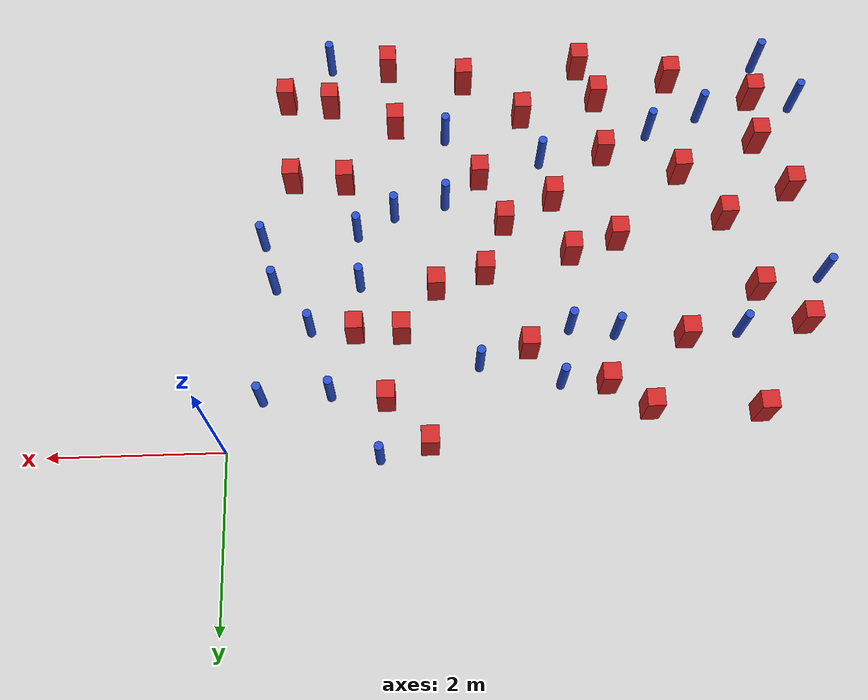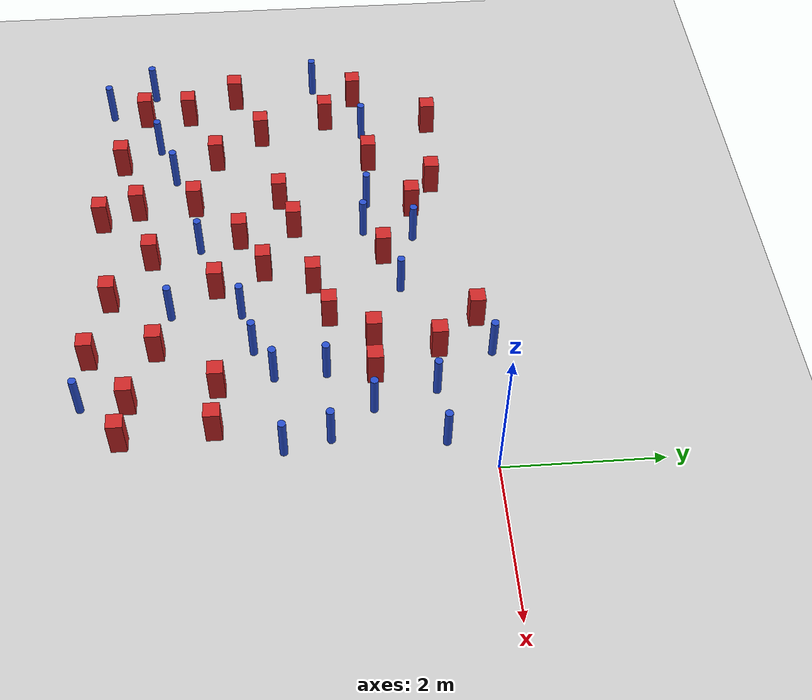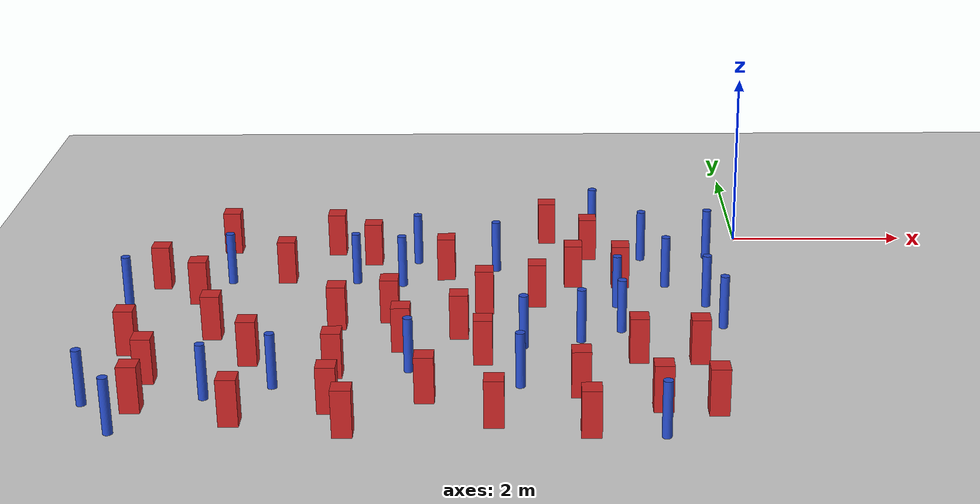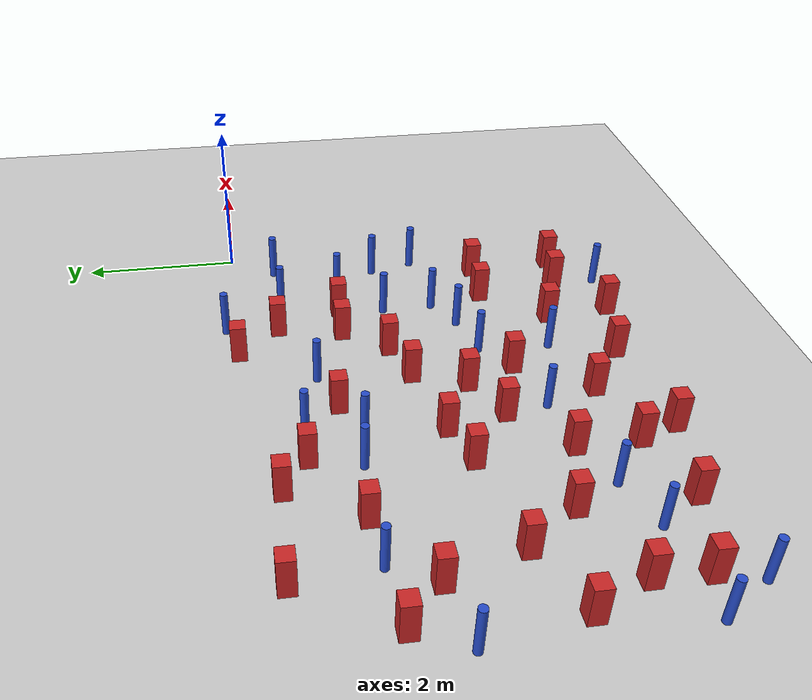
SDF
<sdf version="1.6">
 <world name="default">
  <model name="ground_plane">
   <static>1</static>
   <link name="link">
    <collision name="collision">
     <geometry><plane><normal>0 0 1</normal><size>100 100</size></plane></geometry>
     <surface><friction><ode><mu>100</mu><mu2>50</mu2></ode></friction></surface>
    </collision>
    <visual name="visual">
     <cast_shadows>0</cast_shadows>
     <geometry><plane><normal>0 0 1</normal><size>100 100</size></plane></geometry>
     <material>
      <ambient>1.0 1.0 1.0 1.0</ambient>
      <diffuse>0.8 0.8 0.8 1.0</diffuse>
      <specular>0.01 0.01 0.01 1.000000</specular>
     </material>
    </visual>
   </link>
  </model>
  <model name="square_post_obstacle6">
   <static>true</static>
   <pose>-6.14977336473 -1.77172917575 8.22691968438e-08 7.2212513382e-06 -7.54495500217e-07 2.29674213826e-05</pose>
   <link name="link">
    <pose>0 0 0.25 0 -0 0</pose>
    <inertial>
     <mass>100</mass>
     <inertia>
      <ixx>0.166667</ixx>
      <ixy>0</ixy>
      <ixz>0</ixz>
      <iyy>0.166667</iyy>
      <iyz>0</iyz>
      <izz>0.166667</izz>
     </inertia>
    </inertial>
    <collision name="collision"><geometry><box><size>.2 .2 .5</size></box></geometry></collision>
    <visual name="visual">
     <geometry><box><size>.2 .2 .5</size></box></geometry>
     <material>
      <script><name>Gazebo/Red</name><uri>file://media/materials/scripts/gazebo.material</uri></script>
     </material>
    </visual>
   </link>
  </model>
  <model name="square_post_obstacle10">
   <static>true</static>
   <pose>-6.63615204594 -1.33718850328 8.22691968438e-08 7.2212513382e-06 -7.54495500217e-07 2.29674213826e-05</pose>
   <link name="link">
    <pose>0 0 0.25 0 -0 0</pose>
    <inertial>
     <mass>100</mass>
     <inertia>
      <ixx>0.166667</ixx>
      <ixy>0</ixy>
      <ixz>0</ixz>
      <iyy>0.166667</iyy>
      <iyz>0</iyz>
      <izz>0.166667</izz>
     </inertia>
    </inertial>
    <collision name="collision"><geometry><box><size>.2 .2 .5</size></box></geometry></collision>
    <visual name="visual">
     <geometry><box><size>.2 .2 .5</size></box></geometry>
     <material>
      <script><name>Gazebo/Red</name><uri>file://media/materials/scripts/gazebo.material</uri></script>
     </material>
    </visual>
   </link>
  </model>
  <model name="square_post_obstacle11">
   <static>true</static>
   <pose>-1.44816403198 -1.3662161427 8.22691968438e-08 7.2212513382e-06 -7.54495500217e-07 2.29674213826e-05</pose>
   <link name="link">
    <pose>0 0 0.25 0 -0 0</pose>
    <inertial>
     <mass>100</mass>
     <inertia>
      <ixx>0.166667</ixx>
      <ixy>0</ixy>
      <ixz>0</ixz>
      <iyy>0.166667</iyy>
      <iyz>0</iyz>
      <izz>0.166667</izz>
     </inertia>
    </inertial>
    <collision name="collision"><geometry><box><size>.2 .2 .5</size></box></geometry></collision>
    <visual name="visual">
     <geometry><box><size>.2 .2 .5</size></box></geometry>
     <material>
      <script><name>Gazebo/Red</name><uri>file://media/materials/scripts/gazebo.material</uri></script>
     </material>
    </visual>
   </link>
  </model>
  <model name="square_post_obstacle17">
   <static>true</static>
   <pose>-4.26707742421 -4.89532385467 8.22691968438e-08 7.22125133819e-06 -7.54495500217e-07 2.29674213826e-05</pose>
   <link name="link">
    <pose>0 0 0.25 0 -0 0</pose>
    <inertial>
     <mass>100</mass>
     <inertia>
      <ixx>0.166667</ixx>
      <ixy>0</ixy>
      <ixz>0</ixz>
      <iyy>0.166667</iyy>
      <iyz>0</iyz>
      <izz>0.166667</izz>
     </inertia>
    </inertial>
    <collision name="collision"><geometry><box><size>.2 .2 .5</size></box></geometry></collision>
    <visual name="visual">
     <geometry><box><size>.2 .2 .5</size></box></geometry>
     <material>
      <script><name>Gazebo/Red</name><uri>file://media/materials/scripts/gazebo.material</uri></script>
     </material>
    </visual>
   </link>
  </model>
  <model name="square_post_obstacle22">
   <static>true</static>
   <pose>-5.99015957301 -0.293191965971 8.22691968438e-08 7.2212513382e-06 -7.54495500217e-07 2.29674213826e-05</pose>
   <link name="link">
    <pose>0 0 0.25 0 -0 0</pose>
    <inertial>
     <mass>100</mass>
     <inertia>
      <ixx>0.166667</ixx>
      <ixy>0</ixy>
      <ixz>0</ixz>
      <iyy>0.166667</iyy>
      <iyz>0</iyz>
      <izz>0.166667</izz>
     </inertia>
    </inertial>
    <collision name="collision"><geometry><box><size>.2 .2 .5</size></box></geometry></collision>
    <visual name="visual">
     <geometry><box><size>.2 .2 .5</size></box></geometry>
     <material>
      <script><name>Gazebo/Red</name><uri>file://media/materials/scripts/gazebo.material</uri></script>
     </material>
    </visual>
   </link>
  </model>
  <model name="pole_obstacle14">
   <static>true</static>
   <pose>-0.394715054861 -0.5762549326 2.88873142074e-08 -9.9053668986e-09 4.60219948989e-07 -1.20965994961e-07</pose>
   <link name="link">
    <pose>0 0 0.3 0 -0 0</pose>
    <inertial>
     <mass>1</mass>
     <inertia><ixx>0.145833</ixx><ixy>0</ixy><ixz>0</ixz><iyy>0.145833</iyy><iyz>0</iyz><izz>0.125</izz></inertia>
    </inertial>
    <collision name="collision">
     <geometry><cylinder><radius>0.05</radius><length>.6</length></cylinder></geometry>
    </collision>
    <visual name="visual">
     <geometry><cylinder><radius>0.05</radius><length>.6</length></cylinder></geometry>
     <material>
      <script><name>Gazebo/Blue</name><uri>file://media/materials/scripts/gazebo.material</uri></script>
     </material>
    </visual>
   </link>
  </model>
  <model name="square_post_obstacle30">
   <static>true</static>
   <pose>-2.82356399167 -4.71353256825 8.22691968438e-08 7.22125133819e-06 -7.54495500217e-07 2.29674213826e-05</pose>
   <link name="link">
    <pose>0 0 0.25 0 -0 0</pose>
    <inertial>
     <mass>100</mass>
     <inertia>
      <ixx>0.166667</ixx>
      <ixy>0</ixy>
      <ixz>0</ixz>
      <iyy>0.166667</iyy>
      <iyz>0</iyz>
      <izz>0.166667</izz>
     </inertia>
    </inertial>
    <collision name="collision"><geometry><box><size>.2 .2 .5</size></box></geometry></collision>
    <visual name="visual">
     <geometry><box><size>.2 .2 .5</size></box></geometry>
     <material>
      <script><name>Gazebo/Red</name><uri>file://media/materials/scripts/gazebo.material</uri></script>
     </material>
    </visual>
   </link>
  </model>
  <model name="pole_obstacle25">
   <static>true</static>
   <pose>-5.72160730486 -4.15847414067 2.88873142074e-08 -9.90536690842e-09 4.60219948965e-07 -1.20965994976e-07</pose>
   <link name="link">
    <pose>0 0 0.3 0 -0 0</pose>
    <inertial>
     <mass>1</mass>
     <inertia><ixx>0.145833</ixx><ixy>0</ixy><ixz>0</ixz><iyy>0.145833</iyy><iyz>0</iyz><izz>0.125</izz></inertia>
    </inertial>
    <collision name="collision">
     <geometry><cylinder><radius>0.05</radius><length>.6</length></cylinder></geometry>
    </collision>
    <visual name="visual">
     <geometry><cylinder><radius>0.05</radius><length>.6</length></cylinder></geometry>
     <material>
      <script><name>Gazebo/Blue</name><uri>file://media/materials/scripts/gazebo.material</uri></script>
     </material>
    </visual>
   </link>
  </model>
  <model name="square_post_obstacle38">
   <static>true</static>
   <pose>-6.38761499975 -4.37606674409 8.22691968438e-08 7.22125133819e-06 -7.54495500217e-07 2.29674213826e-05</pose>
   <link name="link">
    <pose>0 0 0.25 0 -0 0</pose>
    <inertial>
     <mass>100</mass>
     <inertia>
      <ixx>0.166667</ixx>
      <ixy>0</ixy>
      <ixz>0</ixz>
      <iyy>0.166667</iyy>
      <iyz>0</iyz>
      <izz>0.166667</izz>
     </inertia>
    </inertial>
    <collision name="collision"><geometry><box><size>.2 .2 .5</size></box></geometry></collision>
    <visual name="visual">
     <geometry><box><size>.2 .2 .5</size></box></geometry>
     <material>
      <script><name>Gazebo/Red</name><uri>file://media/materials/scripts/gazebo.material</uri></script>
     </material>
    </visual>
   </link>
  </model>
  <model name="pole_obstacle44">
   <static>true</static>
   <pose>-0.382834621249 -2.52959124506 2.88873142074e-08 -9.90536689663e-09 4.60219948993e-07 -1.20965994959e-07</pose>
   <link name="link">
    <pose>0 0 0.3 0 -0 0</pose>
    <inertial>
     <mass>1</mass>
     <inertia><ixx>0.145833</ixx><ixy>0</ixy><ixz>0</ixz><iyy>0.145833</iyy><iyz>0</iyz><izz>0.125</izz></inertia>
    </inertial>
    <collision name="collision">
     <geometry><cylinder><radius>0.05</radius><length>.6</length></cylinder></geometry>
    </collision>
    <visual name="visual">
     <geometry><cylinder><radius>0.05</radius><length>.6</length></cylinder></geometry>
     <material>
      <script><name>Gazebo/Blue</name><uri>file://media/materials/scripts/gazebo.material</uri></script>
     </material>
    </visual>
   </link>
  </model>
  <model name="square_post_obstacle43">
   <static>true</static>
   <pose>-6.37481068552 -3.74899959539 8.22691968438e-08 7.2212513382e-06 -7.54495500217e-07 2.29674213826e-05</pose>
   <link name="link">
    <pose>0 0 0.25 0 -0 0</pose>
    <inertial>
     <mass>100</mass>
     <inertia>
      <ixx>0.166667</ixx>
      <ixy>0</ixy>
      <ixz>0</ixz>
      <iyy>0.166667</iyy>
      <iyz>0</iyz>
      <izz>0.166667</izz>
     </inertia>
    </inertial>
    <collision name="collision"><geometry><box><size>.2 .2 .5</size></box></geometry></collision>
    <visual name="visual">
     <geometry><box><size>.2 .2 .5</size></box></geometry>
     <material>
      <script><name>Gazebo/Red</name><uri>file://media/materials/scripts/gazebo.material</uri></script>
     </material>
    </visual>
   </link>
  </model>
  <model name="square_post_obstacle45">
   <static>true</static>
   <pose>-6.69282899664 -3.07403633779 8.22691968438e-08 7.2212513382e-06 -7.54495500217e-07 2.29674213826e-05</pose>
   <link name="link">
    <pose>0 0 0.25 0 -0 0</pose>
    <inertial>
     <mass>100</mass>
     <inertia>
      <ixx>0.166667</ixx>
      <ixy>0</ixy>
      <ixz>0</ixz>
      <iyy>0.166667</iyy>
      <iyz>0</iyz>
      <izz>0.166667</izz>
     </inertia>
    </inertial>
    <collision name="collision"><geometry><box><size>.2 .2 .5</size></box></geometry></collision>
    <visual name="visual">
     <geometry><box><size>.2 .2 .5</size></box></geometry>
     <material>
      <script><name>Gazebo/Red</name><uri>file://media/materials/scripts/gazebo.material</uri></script>
     </material>
    </visual>
   </link>
  </model>
  <model name="square_post_obstacle55">
   <static>true</static>
   <pose>-5.8575691897 -2.70394379022 8.22691968438e-08 7.2212513382e-06 -7.54495500217e-07 2.29674213826e-05</pose>
   <link name="link">
    <pose>0 0 0.25 0 -0 0</pose>
    <inertial>
     <mass>100</mass>
     <inertia>
      <ixx>0.166667</ixx>
      <ixy>0</ixy>
      <ixz>0</ixz>
      <iyy>0.166667</iyy>
      <iyz>0</iyz>
      <izz>0.166667</izz>
     </inertia>
    </inertial>
    <collision name="collision"><geometry><box><size>.2 .2 .5</size></box></geometry></collision>
    <visual name="visual">
     <geometry><box><size>.2 .2 .5</size></box></geometry>
     <material>
      <script><name>Gazebo/Red</name><uri>file://media/materials/scripts/gazebo.material</uri></script>
     </material>
    </visual>
   </link>
  </model>
  <model name="pole_obstacle57">
   <static>true</static>
   <pose>-2.57228640053 -3.92489374628 2.88873142074e-08 -9.90536690232e-09 4.6021994898e-07 -1.20965994968e-07</pose>
   <link name="link">
    <pose>0 0 0.3 0 -0 0</pose>
    <inertial>
     <mass>1</mass>
     <inertia><ixx>0.145833</ixx><ixy>0</ixy><ixz>0</ixz><iyy>0.145833</iyy><iyz>0</iyz><izz>0.125</izz></inertia>
    </inertial>
    <collision name="collision">
     <geometry><cylinder><radius>0.05</radius><length>.6</length></cylinder></geometry>
    </collision>
    <visual name="visual">
     <geometry><cylinder><radius>0.05</radius><length>.6</length></cylinder></geometry>
     <material>
      <script><name>Gazebo/Blue</name><uri>file://media/materials/scripts/gazebo.material</uri></script>
     </material>
    </visual>
   </link>
  </model>
  <model name="pole_obstacle58">
   <static>true</static>
   <pose>-5.06892518937 -3.920027241 2.88873142074e-08 -9.90536690245e-09 4.6021994898e-07 -1.20965994966e-07</pose>
   <link name="link">
    <pose>0 0 0.3 0 -0 0</pose>
    <inertial>
     <mass>1</mass>
     <inertia><ixx>0.145833</ixx><ixy>0</ixy><ixz>0</ixz><iyy>0.145833</iyy><iyz>0</iyz><izz>0.125</izz></inertia>
    </inertial>
    <collision name="collision">
     <geometry><cylinder><radius>0.05</radius><length>.6</length></cylinder></geometry>
    </collision>
    <visual name="visual">
     <geometry><cylinder><radius>0.05</radius><length>.6</length></cylinder></geometry>
     <material>
      <script><name>Gazebo/Blue</name><uri>file://media/materials/scripts/gazebo.material</uri></script>
     </material>
    </visual>
   </link>
  </model>
  <model name="square_post_obstacle65">
   <static>true</static>
   <pose>-0.629836893782 -4.48396061606 8.22691968438e-08 7.22125133819e-06 -7.54495500217e-07 2.29674213826e-05</pose>
   <link name="link">
    <pose>0 0 0.25 0 -0 0</pose>
    <inertial>
     <mass>100</mass>
     <inertia>
      <ixx>0.166667</ixx>
      <ixy>0</ixy>
      <ixz>0</ixz>
      <iyy>0.166667</iyy>
      <iyz>0</iyz>
      <izz>0.166667</izz>
     </inertia>
    </inertial>
    <collision name="collision"><geometry><box><size>.2 .2 .5</size></box></geometry></collision>
    <visual name="visual">
     <geometry><box><size>.2 .2 .5</size></box></geometry>
     <material>
      <script><name>Gazebo/Red</name><uri>file://media/materials/scripts/gazebo.material</uri></script>
     </material>
    </visual>
   </link>
  </model>
  <model name="pole_obstacle71">
   <static>true</static>
   <pose>-3.77558488724 -0.687700063808 2.88873142074e-08 -9.90536689285e-09 4.60219949002e-07 -1.20965994953e-07</pose>
   <link name="link">
    <pose>0 0 0.3 0 -0 0</pose>
    <inertial>
     <mass>1</mass>
     <inertia><ixx>0.145833</ixx><ixy>0</ixy><ixz>0</ixz><iyy>0.145833</iyy><iyz>0</iyz><izz>0.125</izz></inertia>
    </inertial>
    <collision name="collision">
     <geometry><cylinder><radius>0.05</radius><length>.6</length></cylinder></geometry>
    </collision>
    <visual name="visual">
     <geometry><cylinder><radius>0.05</radius><length>.6</length></cylinder></geometry>
     <material>
      <script><name>Gazebo/Blue</name><uri>file://media/materials/scripts/gazebo.material</uri></script>
     </material>
    </visual>
   </link>
  </model>
  <model name="pole_obstacle82">
   <static>true</static>
   <pose>-1.48826732208 -2.62053952271 2.88873142074e-08 -9.90536689791e-09 4.6021994899e-07 -1.20965994959e-07</pose>
   <link name="link">
    <pose>0 0 0.3 0 -0 0</pose>
    <inertial>
     <mass>1</mass>
     <inertia><ixx>0.145833</ixx><ixy>0</ixy><ixz>0</ixz><iyy>0.145833</iyy><iyz>0</iyz><izz>0.125</izz></inertia>
    </inertial>
    <collision name="collision">
     <geometry><cylinder><radius>0.05</radius><length>.6</length></cylinder></geometry>
    </collision>
    <visual name="visual">
     <geometry><cylinder><radius>0.05</radius><length>.6</length></cylinder></geometry>
     <material>
      <script><name>Gazebo/Blue</name><uri>file://media/materials/scripts/gazebo.material</uri></script>
     </material>
    </visual>
   </link>
  </model>
  <model name="pole_obstacle89">
   <static>true</static>
   <pose>-6.51147639079 -4.87668731429 2.88873142074e-08 -9.90536690842e-09 4.60219948965e-07 -1.20965994976e-07</pose>
   <link name="link">
    <pose>0 0 0.3 0 -0 0</pose>
    <inertial>
     <mass>1</mass>
     <inertia><ixx>0.145833</ixx><ixy>0</ixy><ixz>0</ixz><iyy>0.145833</iyy><iyz>0</iyz><izz>0.125</izz></inertia>
    </inertial>
    <collision name="collision">
     <geometry><cylinder><radius>0.05</radius><length>.6</length></cylinder></geometry>
    </collision>
    <visual name="visual">
     <geometry><cylinder><radius>0.05</radius><length>.6</length></cylinder></geometry>
     <material>
      <script><name>Gazebo/Blue</name><uri>file://media/materials/scripts/gazebo.material</uri></script>
     </material>
    </visual>
   </link>
  </model>
  <model name="square_post_obstacle84">
   <static>true</static>
   <pose>-1.96534777671 -4.08964111921 8.22691968438e-08 7.2212513382e-06 -7.54495500217e-07 2.29674213826e-05</pose>
   <link name="link">
    <pose>0 0 0.25 0 -0 0</pose>
    <inertial>
     <mass>100</mass>
     <inertia>
      <ixx>0.166667</ixx>
      <ixy>0</ixy>
      <ixz>0</ixz>
      <iyy>0.166667</iyy>
      <iyz>0</iyz>
      <izz>0.166667</izz>
     </inertia>
    </inertial>
    <collision name="collision"><geometry><box><size>.2 .2 .5</size></box></geometry></collision>
    <visual name="visual">
     <geometry><box><size>.2 .2 .5</size></box></geometry>
     <material>
      <script><name>Gazebo/Red</name><uri>file://media/materials/scripts/gazebo.material</uri></script>
     </material>
    </visual>
   </link>
  </model>
  <model name="pole_obstacle97">
   <static>true</static>
   <pose>-3.71833864885 -3.56192069977 2.88873142074e-08 -9.90536690232e-09 4.6021994898e-07 -1.20965994968e-07</pose>
   <link name="link">
    <pose>0 0 0.3 0 -0 0</pose>
    <inertial>
     <mass>1</mass>
     <inertia><ixx>0.145833</ixx><ixy>0</ixy><ixz>0</ixz><iyy>0.145833</iyy><iyz>0</iyz><izz>0.125</izz></inertia>
    </inertial>
    <collision name="collision">
     <geometry><cylinder><radius>0.05</radius><length>.6</length></cylinder></geometry>
    </collision>
    <visual name="visual">
     <geometry><cylinder><radius>0.05</radius><length>.6</length></cylinder></geometry>
     <material>
      <script><name>Gazebo/Blue</name><uri>file://media/materials/scripts/gazebo.material</uri></script>
     </material>
    </visual>
   </link>
  </model>
  <model name="pole_obstacle98">
   <static>true</static>
   <pose>-1.51093030225 -1.96393112222 2.88873142074e-08 -9.90536689899e-09 4.60219948988e-07 -1.20965994961e-07</pose>
   <link name="link">
    <pose>0 0 0.3 0 -0 0</pose>
    <inertial>
     <mass>1</mass>
     <inertia><ixx>0.145833</ixx><ixy>0</ixy><ixz>0</ixz><iyy>0.145833</iyy><iyz>0</iyz><izz>0.125</izz></inertia>
    </inertial>
    <collision name="collision">
     <geometry><cylinder><radius>0.05</radius><length>.6</length></cylinder></geometry>
    </collision>
    <visual name="visual">
     <geometry><cylinder><radius>0.05</radius><length>.6</length></cylinder></geometry>
     <material>
      <script><name>Gazebo/Blue</name><uri>file://media/materials/scripts/gazebo.material</uri></script>
     </material>
    </visual>
   </link>
  </model>
  <model name="pole_obstacle106">
   <static>true</static>
   <pose>-1.17018287745 -0.619495090177 2.88873142074e-08 -9.90536689692e-09 4.60219948993e-07 -1.20965994958e-07</pose>
   <link name="link">
    <pose>0 0 0.3 0 -0 0</pose>
    <inertial>
     <mass>1</mass>
     <inertia><ixx>0.145833</ixx><ixy>0</ixy><ixz>0</ixz><iyy>0.145833</iyy><iyz>0</iyz><izz>0.125</izz></inertia>
    </inertial>
    <collision name="collision">
     <geometry><cylinder><radius>0.05</radius><length>.6</length></cylinder></geometry>
    </collision>
    <visual name="visual">
     <geometry><cylinder><radius>0.05</radius><length>.6</length></cylinder></geometry>
     <material>
      <script><name>Gazebo/Blue</name><uri>file://media/materials/scripts/gazebo.material</uri></script>
     </material>
    </visual>
   </link>
  </model>
  <model name="square_post_obstacle96">
   <static>true</static>
   <pose>-5.24021135395 -1.19880587184 8.22691968438e-08 7.2212513382e-06 -7.54495500217e-07 2.29674213826e-05</pose>
   <link name="link">
    <pose>0 0 0.25 0 -0 0</pose>
    <inertial>
     <mass>100</mass>
     <inertia>
      <ixx>0.166667</ixx>
      <ixy>0</ixy>
      <ixz>0</ixz>
      <iyy>0.166667</iyy>
      <iyz>0</iyz>
      <izz>0.166667</izz>
     </inertia>
    </inertial>
    <collision name="collision"><geometry><box><size>.2 .2 .5</size></box></geometry></collision>
    <visual name="visual">
     <geometry><box><size>.2 .2 .5</size></box></geometry>
     <material>
      <script><name>Gazebo/Red</name><uri>file://media/materials/scripts/gazebo.material</uri></script>
     </material>
    </visual>
   </link>
  </model>
  <model name="square_post_obstacle97">
   <static>true</static>
   <pose>-3.22931445346 -2.71208164699 8.22691968438e-08 7.2212513382e-06 -7.54495500217e-07 2.29674213826e-05</pose>
   <link name="link">
    <pose>0 0 0.25 0 -0 0</pose>
    <inertial>
     <mass>100</mass>
     <inertia>
      <ixx>0.166667</ixx>
      <ixy>0</ixy>
      <ixz>0</ixz>
      <iyy>0.166667</iyy>
      <iyz>0</iyz>
      <izz>0.166667</izz>
     </inertia>
    </inertial>
    <collision name="collision"><geometry><box><size>.2 .2 .5</size></box></geometry></collision>
    <visual name="visual">
     <geometry><box><size>.2 .2 .5</size></box></geometry>
     <material>
      <script><name>Gazebo/Red</name><uri>file://media/materials/scripts/gazebo.material</uri></script>
     </material>
    </visual>
   </link>
  </model>
  <model name="pole_obstacle110">
   <static>true</static>
   <pose>-5.8669502326 -1.25629236942 2.88873142074e-08 -9.90536689445e-09 4.60219948999e-07 -1.20965994956e-07</pose>
   <link name="link">
    <pose>0 0 0.3 0 -0 0</pose>
    <inertial>
     <mass>1</mass>
     <inertia><ixx>0.145833</ixx><ixy>0</ixy><ixz>0</ixz><iyy>0.145833</iyy><iyz>0</iyz><izz>0.125</izz></inertia>
    </inertial>
    <collision name="collision">
     <geometry><cylinder><radius>0.05</radius><length>.6</length></cylinder></geometry>
    </collision>
    <visual name="visual">
     <geometry><cylinder><radius>0.05</radius><length>.6</length></cylinder></geometry>
     <material>
      <script><name>Gazebo/Blue</name><uri>file://media/materials/scripts/gazebo.material</uri></script>
     </material>
    </visual>
   </link>
  </model>
  <model name="pole_obstacle115">
   <static>true</static>
   <pose>-1.71541891095 0.136538788802 2.88873142074e-08 -9.9053668953e-09 4.60219948996e-07 -1.20965994955e-07</pose>
   <link name="link">
    <pose>0 0 0.3 0 -0 0</pose>
    <inertial>
     <mass>1</mass>
     <inertia><ixx>0.145833</ixx><ixy>0</ixy><ixz>0</ixz><iyy>0.145833</iyy><iyz>0</iyz><izz>0.125</izz></inertia>
    </inertial>
    <collision name="collision">
     <geometry><cylinder><radius>0.05</radius><length>.6</length></cylinder></geometry>
    </collision>
    <visual name="visual">
     <geometry><cylinder><radius>0.05</radius><length>.6</length></cylinder></geometry>
     <material>
      <script><name>Gazebo/Blue</name><uri>file://media/materials/scripts/gazebo.material</uri></script>
     </material>
    </visual>
   </link>
  </model>
  <model name="square_post_obstacle103">
   <static>true</static>
   <pose>-4.55288031548 -2.47188417033 8.22691968438e-08 7.2212513382e-06 -7.54495500217e-07 2.29674213826e-05</pose>
   <link name="link">
    <pose>0 0 0.25 0 -0 0</pose>
    <inertial>
     <mass>100</mass>
     <inertia>
      <ixx>0.166667</ixx>
      <ixy>0</ixy>
      <ixz>0</ixz>
      <iyy>0.166667</iyy>
      <iyz>0</iyz>
      <izz>0.166667</izz>
     </inertia>
    </inertial>
    <collision name="collision"><geometry><box><size>.2 .2 .5</size></box></geometry></collision>
    <visual name="visual">
     <geometry><box><size>.2 .2 .5</size></box></geometry>
     <material>
      <script><name>Gazebo/Red</name><uri>file://media/materials/scripts/gazebo.material</uri></script>
     </material>
    </visual>
   </link>
  </model>
  <model name="square_post_obstacle104">
   <static>true</static>
   <pose>-4.48627466404 -3.63446074982 8.22691968438e-08 7.2212513382e-06 -7.54495500217e-07 2.29674213826e-05</pose>
   <link name="link">
    <pose>0 0 0.25 0 -0 0</pose>
    <inertial>
     <mass>100</mass>
     <inertia>
      <ixx>0.166667</ixx>
      <ixy>0</ixy>
      <ixz>0</ixz>
      <iyy>0.166667</iyy>
      <iyz>0</iyz>
      <izz>0.166667</izz>
     </inertia>
    </inertial>
    <collision name="collision"><geometry><box><size>.2 .2 .5</size></box></geometry></collision>
    <visual name="visual">
     <geometry><box><size>.2 .2 .5</size></box></geometry>
     <material>
      <script><name>Gazebo/Red</name><uri>file://media/materials/scripts/gazebo.material</uri></script>
     </material>
    </visual>
   </link>
  </model>
  <model name="square_post_obstacle106">
   <static>true</static>
   <pose>-2.9719369134 -2.06971172963 8.22691968438e-08 7.22125133819e-06 -7.54495500217e-07 2.29674213826e-05</pose>
   <link name="link">
    <pose>0 0 0.25 0 -0 0</pose>
    <inertial>
     <mass>100</mass>
     <inertia>
      <ixx>0.166667</ixx>
      <ixy>0</ixy>
      <ixz>0</ixz>
      <iyy>0.166667</iyy>
      <iyz>0</iyz>
      <izz>0.166667</izz>
     </inertia>
    </inertial>
    <collision name="collision"><geometry><box><size>.2 .2 .5</size></box></geometry></collision>
    <visual name="visual">
     <geometry><box><size>.2 .2 .5</size></box></geometry>
     <material>
      <script><name>Gazebo/Red</name><uri>file://media/materials/scripts/gazebo.material</uri></script>
     </material>
    </visual>
   </link>
  </model>
  <model name="pole_obstacle121">
   <static>true</static>
   <pose>-2.86093371433 -0.928037592389 2.88873142074e-08 -9.90536689285e-09 4.60219949002e-07 -1.20965994953e-07</pose>
   <link name="link">
    <pose>0 0 0.3 0 -0 0</pose>
    <inertial>
     <mass>1</mass>
     <inertia><ixx>0.145833</ixx><ixy>0</ixy><ixz>0</ixz><iyy>0.145833</iyy><iyz>0</iyz><izz>0.125</izz></inertia>
    </inertial>
    <collision name="collision">
     <geometry><cylinder><radius>0.05</radius><length>.6</length></cylinder></geometry>
    </collision>
    <visual name="visual">
     <geometry><cylinder><radius>0.05</radius><length>.6</length></cylinder></geometry>
     <material>
      <script><name>Gazebo/Blue</name><uri>file://media/materials/scripts/gazebo.material</uri></script>
     </material>
    </visual>
   </link>
  </model>
  <model name="pole_obstacle122">
   <static>true</static>
   <pose>-1.17524001482 -4.99713506357 2.88873142074e-08 -9.90536689852e-09 4.60219948989e-07 -1.2096599496e-07</pose>
   <link name="link">
    <pose>0 0 0.3 0 -0 0</pose>
    <inertial>
     <mass>1</mass>
     <inertia><ixx>0.145833</ixx><ixy>0</ixy><ixz>0</ixz><iyy>0.145833</iyy><iyz>0</iyz><izz>0.125</izz></inertia>
    </inertial>
    <collision name="collision">
     <geometry><cylinder><radius>0.05</radius><length>.6</length></cylinder></geometry>
    </collision>
    <visual name="visual">
     <geometry><cylinder><radius>0.05</radius><length>.6</length></cylinder></geometry>
     <material>
      <script><name>Gazebo/Blue</name><uri>file://media/materials/scripts/gazebo.material</uri></script>
     </material>
    </visual>
   </link>
  </model>
  <model name="pole_obstacle125">
   <static>true</static>
   <pose>-0.935887486017 -1.41285384492 2.88873142074e-08 -9.90536689855e-09 4.60219948989e-07 -1.20965994962e-07</pose>
   <link name="link">
    <pose>0 0 0.3 0 -0 0</pose>
    <inertial>
     <mass>1</mass>
     <inertia><ixx>0.145833</ixx><ixy>0</ixy><ixz>0</ixz><iyy>0.145833</iyy><iyz>0</iyz><izz>0.125</izz></inertia>
    </inertial>
    <collision name="collision">
     <geometry><cylinder><radius>0.05</radius><length>.6</length></cylinder></geometry>
    </collision>
    <visual name="visual">
     <geometry><cylinder><radius>0.05</radius><length>.6</length></cylinder></geometry>
     <material>
      <script><name>Gazebo/Blue</name><uri>file://media/materials/scripts/gazebo.material</uri></script>
     </material>
    </visual>
   </link>
  </model>
  <model name="square_post_obstacle113">
   <static>true</static>
   <pose>-5.38846828213 -3.34295811918 8.22691968438e-08 7.2212513382e-06 -7.54495500217e-07 2.29674213826e-05</pose>
   <link name="link">
    <pose>0 0 0.25 0 -0 0</pose>
    <inertial>
     <mass>100</mass>
     <inertia>
      <ixx>0.166667</ixx>
      <ixy>0</ixy>
      <ixz>0</ixz>
      <iyy>0.166667</iyy>
      <iyz>0</iyz>
      <izz>0.166667</izz>
     </inertia>
    </inertial>
    <collision name="collision"><geometry><box><size>.2 .2 .5</size></box></geometry></collision>
    <visual name="visual">
     <geometry><box><size>.2 .2 .5</size></box></geometry>
     <material>
      <script><name>Gazebo/Red</name><uri>file://media/materials/scripts/gazebo.material</uri></script>
     </material>
    </visual>
   </link>
  </model>
  <model name="square_post_obstacle115">
   <static>true</static>
   <pose>-5.38157170127 -4.66574990229 8.22691968438e-08 7.22125133819e-06 -7.54495500217e-07 2.29674213826e-05</pose>
   <link name="link">
    <pose>0 0 0.25 0 -0 0</pose>
    <inertial>
     <mass>100</mass>
     <inertia>
      <ixx>0.166667</ixx>
      <ixy>0</ixy>
      <ixz>0</ixz>
      <iyy>0.166667</iyy>
      <iyz>0</iyz>
      <izz>0.166667</izz>
     </inertia>
    </inertial>
    <collision name="collision"><geometry><box><size>.2 .2 .5</size></box></geometry></collision>
    <visual name="visual">
     <geometry><box><size>.2 .2 .5</size></box></geometry>
     <material>
      <script><name>Gazebo/Red</name><uri>file://media/materials/scripts/gazebo.material</uri></script>
     </material>
    </visual>
   </link>
  </model>
  <model name="pole_obstacle141">
   <static>true</static>
   <pose>-1.92891240058 -2.86922167565 2.88873142074e-08 -9.90536689791e-09 4.6021994899e-07 -1.20965994959e-07</pose>
   <link name="link">
    <pose>0 0 0.3 0 -0 0</pose>
    <inertial>
     <mass>1</mass>
     <inertia><ixx>0.145833</ixx><ixy>0</ixy><ixz>0</ixz><iyy>0.145833</iyy><iyz>0</iyz><izz>0.125</izz></inertia>
    </inertial>
    <collision name="collision">
     <geometry><cylinder><radius>0.05</radius><length>.6</length></cylinder></geometry>
    </collision>
    <visual name="visual">
     <geometry><cylinder><radius>0.05</radius><length>.6</length></cylinder></geometry>
     <material>
      <script><name>Gazebo/Blue</name><uri>file://media/materials/scripts/gazebo.material</uri></script>
     </material>
    </visual>
   </link>
  </model>
  <model name="square_post_obstacle129">
   <static>true</static>
   <pose>-3.429080675 -1.11802285327 8.22691968438e-08 7.2212513382e-06 -7.54495500217e-07 2.29674213826e-05</pose>
   <link name="link">
    <pose>0 0 0.25 0 -0 0</pose>
    <inertial>
     <mass>100</mass>
     <inertia>
      <ixx>0.166667</ixx>
      <ixy>0</ixy>
      <ixz>0</ixz>
      <iyy>0.166667</iyy>
      <iyz>0</iyz>
      <izz>0.166667</izz>
     </inertia>
    </inertial>
    <collision name="collision"><geometry><box><size>.2 .2 .5</size></box></geometry></collision>
    <visual name="visual">
     <geometry><box><size>.2 .2 .5</size></box></geometry>
     <material>
      <script><name>Gazebo/Red</name><uri>file://media/materials/scripts/gazebo.material</uri></script>
     </material>
    </visual>
   </link>
  </model>
  <model name="pole_obstacle148">
   <static>true</static>
   <pose>-2.54036865641 -3.01593127628 2.88873142074e-08 -9.90536690232e-09 4.6021994898e-07 -1.20965994968e-07</pose>
   <link name="link">
    <pose>0 0 0.3 0 -0 0</pose>
    <inertial>
     <mass>1</mass>
     <inertia><ixx>0.145833</ixx><ixy>0</ixy><ixz>0</ixz><iyy>0.145833</iyy><iyz>0</iyz><izz>0.125</izz></inertia>
    </inertial>
    <collision name="collision">
     <geometry><cylinder><radius>0.05</radius><length>.6</length></cylinder></geometry>
    </collision>
    <visual name="visual">
     <geometry><cylinder><radius>0.05</radius><length>.6</length></cylinder></geometry>
     <material>
      <script><name>Gazebo/Blue</name><uri>file://media/materials/scripts/gazebo.material</uri></script>
     </material>
    </visual>
   </link>
  </model>
  <model name="square_post_obstacle140">
   <static>true</static>
   <pose>-3.5218143654 -4.20003083942 8.22691968438e-08 7.22125133819e-06 -7.54495500217e-07 2.29674213826e-05</pose>
   <link name="link">
    <pose>0 0 0.25 0 -0 0</pose>
    <inertial>
     <mass>100</mass>
     <inertia>
      <ixx>0.166667</ixx>
      <ixy>0</ixy>
      <ixz>0</ixz>
      <iyy>0.166667</iyy>
      <iyz>0</iyz>
      <izz>0.166667</izz>
     </inertia>
    </inertial>
    <collision name="collision"><geometry><box><size>.2 .2 .5</size></box></geometry></collision>
    <visual name="visual">
     <geometry><box><size>.2 .2 .5</size></box></geometry>
     <material>
      <script><name>Gazebo/Red</name><uri>file://media/materials/scripts/gazebo.material</uri></script>
     </material>
    </visual>
   </link>
  </model>
  <model name="square_post_obstacle141">
   <static>true</static>
   <pose>-2.26896967143 -0.0086655899358 8.22691968438e-08 7.22125133819e-06 -7.54495500217e-07 2.29674213826e-05</pose>
   <link name="link">
    <pose>0 0 0.25 0 -0 0</pose>
    <inertial>
     <mass>100</mass>
     <inertia>
      <ixx>0.166667</ixx>
      <ixy>0</ixy>
      <ixz>0</ixz>
      <iyy>0.166667</iyy>
      <iyz>0</iyz>
      <izz>0.166667</izz>
     </inertia>
    </inertial>
    <collision name="collision"><geometry><box><size>.2 .2 .5</size></box></geometry></collision>
    <visual name="visual">
     <geometry><box><size>.2 .2 .5</size></box></geometry>
     <material>
      <script><name>Gazebo/Red</name><uri>file://media/materials/scripts/gazebo.material</uri></script>
     </material>
    </visual>
   </link>
  </model>
  <model name="square_post_obstacle145">
   <static>true</static>
   <pose>-1.1692494927 -4.40952904351 8.22691968438e-08 7.2212513382e-06 -7.54495500217e-07 2.29674213826e-05</pose>
   <link name="link">
    <pose>0 0 0.25 0 -0 0</pose>
    <inertial>
     <mass>100</mass>
     <inertia>
      <ixx>0.166667</ixx>
      <ixy>0</ixy>
      <ixz>0</ixz>
      <iyy>0.166667</iyy>
      <iyz>0</iyz>
      <izz>0.166667</izz>
     </inertia>
    </inertial>
    <collision name="collision"><geometry><box><size>.2 .2 .5</size></box></geometry></collision>
    <visual name="visual">
     <geometry><box><size>.2 .2 .5</size></box></geometry>
     <material>
      <script><name>Gazebo/Red</name><uri>file://media/materials/scripts/gazebo.material</uri></script>
     </material>
    </visual>
   </link>
  </model>
  <model name="square_post_obstacle146">
   <static>true</static>
   <pose>-1.98348289194 -1.34414930947 8.22691968438e-08 7.2212513382e-06 -7.54495500217e-07 2.29674213826e-05</pose>
   <link name="link">
    <pose>0 0 0.25 0 -0 0</pose>
    <inertial>
     <mass>100</mass>
     <inertia>
      <ixx>0.166667</ixx>
      <ixy>0</ixy>
      <ixz>0</ixz>
      <iyy>0.166667</iyy>
      <iyz>0</iyz>
      <izz>0.166667</izz>
     </inertia>
    </inertial>
    <collision name="collision"><geometry><box><size>.2 .2 .5</size></box></geometry></collision>
    <visual name="visual">
     <geometry><box><size>.2 .2 .5</size></box></geometry>
     <material>
      <script><name>Gazebo/Red</name><uri>file://media/materials/scripts/gazebo.material</uri></script>
     </material>
    </visual>
   </link>
  </model>
  <model name="square_post_obstacle149">
   <static>true</static>
   <pose>-1.89087570136 -4.92951799112 8.22691968438e-08 7.2212513382e-06 -7.54495500217e-07 2.29674213826e-05</pose>
   <link name="link">
    <pose>0 0 0.25 0 -0 0</pose>
    <inertial>
     <mass>100</mass>
     <inertia>
      <ixx>0.166667</ixx>
      <ixy>0</ixy>
      <ixz>0</ixz>
      <iyy>0.166667</iyy>
      <iyz>0</iyz>
      <izz>0.166667</izz>
     </inertia>
    </inertial>
    <collision name="collision"><geometry><box><size>.2 .2 .5</size></box></geometry></collision>
    <visual name="visual">
     <geometry><box><size>.2 .2 .5</size></box></geometry>
     <material>
      <script><name>Gazebo/Red</name><uri>file://media/materials/scripts/gazebo.material</uri></script>
     </material>
    </visual>
   </link>
  </model>
  <model name="square_post_obstacle156">
   <static>true</static>
   <pose>-1.34483129472 -3.31790028588 8.22691968438e-08 7.2212513382e-06 -7.54495500217e-07 2.29674213826e-05</pose>
   <link name="link">
    <pose>0 0 0.25 0 -0 0</pose>
    <inertial>
     <mass>100</mass>
     <inertia>
      <ixx>0.166667</ixx>
      <ixy>0</ixy>
      <ixz>0</ixz>
      <iyy>0.166667</iyy>
      <iyz>0</iyz>
      <izz>0.166667</izz>
     </inertia>
    </inertial>
    <collision name="collision"><geometry><box><size>.2 .2 .5</size></box></geometry></collision>
    <visual name="visual">
     <geometry><box><size>.2 .2 .5</size></box></geometry>
     <material>
      <script><name>Gazebo/Red</name><uri>file://media/materials/scripts/gazebo.material</uri></script>
     </material>
    </visual>
   </link>
  </model>
  <model name="square_post_obstacle163">
   <static>true</static>
   <pose>-3.99682440556 -2.29186444009 8.22691968438e-08 7.2212513382e-06 -7.54495500217e-07 2.29674213826e-05</pose>
   <link name="link">
    <pose>0 0 0.25 0 -0 0</pose>
    <inertial>
     <mass>100</mass>
     <inertia>
      <ixx>0.166667</ixx>
      <ixy>0</ixy>
      <ixz>0</ixz>
      <iyy>0.166667</iyy>
      <iyz>0</iyz>
      <izz>0.166667</izz>
     </inertia>
    </inertial>
    <collision name="collision"><geometry><box><size>.2 .2 .5</size></box></geometry></collision>
    <visual name="visual">
     <geometry><box><size>.2 .2 .5</size></box></geometry>
     <material>
      <script><name>Gazebo/Red</name><uri>file://media/materials/scripts/gazebo.material</uri></script>
     </material>
    </visual>
   </link>
  </model>
  <model name="square_post_obstacle165">
   <static>true</static>
   <pose>-2.39451701914 -1.88801024483 8.22691968438e-08 7.2212513382e-06 -7.54495500217e-07 2.29674213826e-05</pose>
   <link name="link">
    <pose>0 0 0.25 0 -0 0</pose>
    <inertial>
     <mass>100</mass>
     <inertia>
      <ixx>0.166667</ixx>
      <ixy>0</ixy>
      <ixz>0</ixz>
      <iyy>0.166667</iyy>
      <iyz>0</iyz>
      <izz>0.166667</izz>
     </inertia>
    </inertial>
    <collision name="collision"><geometry><box><size>.2 .2 .5</size></box></geometry></collision>
    <visual name="visual">
     <geometry><box><size>.2 .2 .5</size></box></geometry>
     <material>
      <script><name>Gazebo/Red</name><uri>file://media/materials/scripts/gazebo.material</uri></script>
     </material>
    </visual>
   </link>
  </model>
  <model name="square_post_obstacle179">
   <static>true</static>
   <pose>-4.29391848682 -0.668915632344 8.22691968438e-08 7.2212513382e-06 -7.54495500217e-07 2.29674213826e-05</pose>
   <link name="link">
    <pose>0 0 0.25 0 -0 0</pose>
    <inertial>
     <mass>100</mass>
     <inertia>
      <ixx>0.166667</ixx>
      <ixy>0</ixy>
      <ixz>0</ixz>
      <iyy>0.166667</iyy>
      <iyz>0</iyz>
      <izz>0.166667</izz>
     </inertia>
    </inertial>
    <collision name="collision"><geometry><box><size>.2 .2 .5</size></box></geometry></collision>
    <visual name="visual">
     <geometry><box><size>.2 .2 .5</size></box></geometry>
     <material>
      <script><name>Gazebo/Red</name><uri>file://media/materials/scripts/gazebo.material</uri></script>
     </material>
    </visual>
   </link>
  </model>
  <model name="square_post_obstacle186">
   <static>true</static>
   <pose>-0.713543248484 -3.35480556324 8.22691968438e-08 7.2212513382e-06 -7.54495500217e-07 2.29674213826e-05</pose>
   <link name="link">
    <pose>0 0 0.25 0 -0 0</pose>
    <inertial>
     <mass>100</mass>
     <inertia>
      <ixx>0.166667</ixx>
      <ixy>0</ixy>
      <ixz>0</ixz>
      <iyy>0.166667</iyy>
      <iyz>0</iyz>
      <izz>0.166667</izz>
     </inertia>
    </inertial>
    <collision name="collision"><geometry><box><size>.2 .2 .5</size></box></geometry></collision>
    <visual name="visual">
     <geometry><box><size>.2 .2 .5</size></box></geometry>
     <material>
      <script><name>Gazebo/Red</name><uri>file://media/materials/scripts/gazebo.material</uri></script>
     </material>
    </visual>
   </link>
  </model>
  <model name="square_post_obstacle197">
   <static>true</static>
   <pose>-2.96112528481 -3.33927110615 8.22691968438e-08 7.2212513382e-06 -7.54495500217e-07 2.29674213826e-05</pose>
   <link name="link">
    <pose>0 0 0.25 0 -0 0</pose>
    <inertial>
     <mass>100</mass>
     <inertia>
      <ixx>0.166667</ixx>
      <ixy>0</ixy>
      <ixz>0</ixz>
      <iyy>0.166667</iyy>
      <iyz>0</iyz>
      <izz>0.166667</izz>
     </inertia>
    </inertial>
    <collision name="collision"><geometry><box><size>.2 .2 .5</size></box></geometry></collision>
    <visual name="visual">
     <geometry><box><size>.2 .2 .5</size></box></geometry>
     <material>
      <script><name>Gazebo/Red</name><uri>file://media/materials/scripts/gazebo.material</uri></script>
     </material>
    </visual>
   </link>
  </model>
  <model name="pole_obstacle189">
   <static>true</static>
   <pose>-4.44361409206 -1.27336379886 2.88873142074e-08 -9.90536689445e-09 4.60219948999e-07 -1.20965994956e-07</pose>
   <link name="link">
    <pose>0 0 0.3 0 -0 0</pose>
    <inertial>
     <mass>1</mass>
     <inertia><ixx>0.145833</ixx><ixy>0</ixy><ixz>0</ixz><iyy>0.145833</iyy><iyz>0</iyz><izz>0.125</izz></inertia>
    </inertial>
    <collision name="collision">
     <geometry><cylinder><radius>0.05</radius><length>.6</length></cylinder></geometry>
    </collision>
    <visual name="visual">
     <geometry><cylinder><radius>0.05</radius><length>.6</length></cylinder></geometry>
     <material>
      <script><name>Gazebo/Blue</name><uri>file://media/materials/scripts/gazebo.material</uri></script>
     </material>
    </visual>
   </link>
  </model>
  <model name="square_post_obstacle204">
   <static>true</static>
   <pose>-1.79657114012 -0.535879571977 8.22691968438e-08 7.22125133819e-06 -7.54495500217e-07 2.29674213826e-05</pose>
   <link name="link">
    <pose>0 0 0.25 0 -0 0</pose>
    <inertial>
     <mass>100</mass>
     <inertia>
      <ixx>0.166667</ixx>
      <ixy>0</ixy>
      <ixz>0</ixz>
      <iyy>0.166667</iyy>
      <iyz>0</iyz>
      <izz>0.166667</izz>
     </inertia>
    </inertial>
    <collision name="collision"><geometry><box><size>.2 .2 .5</size></box></geometry></collision>
    <visual name="visual">
     <geometry><box><size>.2 .2 .5</size></box></geometry>
     <material>
      <script><name>Gazebo/Red</name><uri>file://media/materials/scripts/gazebo.material</uri></script>
     </material>
    </visual>
   </link>
  </model>
  <model name="square_post_obstacle210">
   <static>true</static>
   <pose>-4.46148175333 -4.41160576026 8.22691968438e-08 7.22125133819e-06 -7.54495500217e-07 2.29674213826e-05</pose>
   <link name="link">
    <pose>0 0 0.25 0 -0 0</pose>
    <inertial>
     <mass>100</mass>
     <inertia>
      <ixx>0.166667</ixx>
      <ixy>0</ixy>
      <ixz>0</ixz>
      <iyy>0.166667</iyy>
      <iyz>0</iyz>
      <izz>0.166667</izz>
     </inertia>
    </inertial>
    <collision name="collision"><geometry><box><size>.2 .2 .5</size></box></geometry></collision>
    <visual name="visual">
     <geometry><box><size>.2 .2 .5</size></box></geometry>
     <material>
      <script><name>Gazebo/Red</name><uri>file://media/materials/scripts/gazebo.material</uri></script>
     </material>
    </visual>
   </link>
  </model>
  <model name="square_post_obstacle211">
   <static>true</static>
   <pose>-3.82754267298 -3.02138886531 8.22691968438e-08 7.2212513382e-06 -7.54495500217e-07 2.29674213826e-05</pose>
   <link name="link">
    <pose>0 0 0.25 0 -0 0</pose>
    <inertial>
     <mass>100</mass>
     <inertia>
      <ixx>0.166667</ixx>
      <ixy>0</ixy>
      <ixz>0</ixz>
      <iyy>0.166667</iyy>
      <iyz>0</iyz>
      <izz>0.166667</izz>
     </inertia>
    </inertial>
    <collision name="collision"><geometry><box><size>.2 .2 .5</size></box></geometry></collision>
    <visual name="visual">
     <geometry><box><size>.2 .2 .5</size></box></geometry>
     <material>
      <script><name>Gazebo/Red</name><uri>file://media/materials/scripts/gazebo.material</uri></script>
     </material>
    </visual>
   </link>
  </model>
  <model name="square_post_obstacle229">
   <static>true</static>
   <pose>-4.74709454082 -0.353568359284 8.22691968438e-08 7.22125133819e-06 -7.54495500217e-07 2.29674213826e-05</pose>
   <link name="link">
    <pose>0 0 0.25 0 -0 0</pose>
    <inertial>
     <mass>100</mass>
     <inertia>
      <ixx>0.166667</ixx>
      <ixy>0</ixy>
      <ixz>0</ixz>
      <iyy>0.166667</iyy>
      <iyz>0</iyz>
      <izz>0.166667</izz>
     </inertia>
    </inertial>
    <collision name="collision"><geometry><box><size>.2 .2 .5</size></box></geometry></collision>
    <visual name="visual">
     <geometry><box><size>.2 .2 .5</size></box></geometry>
     <material>
      <script><name>Gazebo/Red</name><uri>file://media/materials/scripts/gazebo.material</uri></script>
     </material>
    </visual>
   </link>
  </model>
  <model name="pole_obstacle201">
   <static>true</static>
   <pose>-3.91783999087 -1.35223997959 2.88873142074e-08 -9.90536689395e-09 4.60219949e-07 -1.20965994953e-07</pose>
   <link name="link">
    <pose>0 0 0.3 0 -0 0</pose>
    <inertial>
     <mass>1</mass>
     <inertia><ixx>0.145833</ixx><ixy>0</ixy><ixz>0</ixz><iyy>0.145833</iyy><iyz>0</iyz><izz>0.125</izz></inertia>
    </inertial>
    <collision name="collision">
     <geometry><cylinder><radius>0.05</radius><length>.6</length></cylinder></geometry>
    </collision>
    <visual name="visual">
     <geometry><cylinder><radius>0.05</radius><length>.6</length></cylinder></geometry>
     <material>
      <script><name>Gazebo/Blue</name><uri>file://media/materials/scripts/gazebo.material</uri></script>
     </material>
    </visual>
   </link>
  </model>
  <model name="pole_obstacle203">
   <static>true</static>
   <pose>-6.90433999087 -4.27370997959 2.88873142074e-08 -9.90536690842e-09 4.60219948965e-07 -1.20965994976e-07</pose>
   <link name="link">
    <pose>0 0 0.3 0 -0 0</pose>
    <inertial>
     <mass>1</mass>
     <inertia><ixx>0.145833</ixx><ixy>0</ixy><ixz>0</ixz><iyy>0.145833</iyy><iyz>0</iyz><izz>0.125</izz></inertia>
    </inertial>
    <collision name="collision">
     <geometry><cylinder><radius>0.05</radius><length>.6</length></cylinder></geometry>
    </collision>
    <visual name="visual">
     <geometry><cylinder><radius>0.05</radius><length>.6</length></cylinder></geometry>
     <material>
      <script><name>Gazebo/Blue</name><uri>file://media/materials/scripts/gazebo.material</uri></script>
     </material>
    </visual>
   </link>
  </model>
  <model name="pole_obstacle205">
   <static>true</static>
   <pose>-0.520657990867 -1.95841997959 2.88873142074e-08 -9.9053668987e-09 4.60219948988e-07 -1.2096599496e-07</pose>
   <link name="link">
    <pose>0 0 0.3 0 -0 0</pose>
    <inertial>
     <mass>1</mass>
     <inertia><ixx>0.145833</ixx><ixy>0</ixy><ixz>0</ixz><iyy>0.145833</iyy><iyz>0</iyz><izz>0.125</izz></inertia>
    </inertial>
    <collision name="collision">
     <geometry><cylinder><radius>0.05</radius><length>.6</length></cylinder></geometry>
    </collision>
    <visual name="visual">
     <geometry><cylinder><radius>0.05</radius><length>.6</length></cylinder></geometry>
     <material>
      <script><name>Gazebo/Blue</name><uri>file://media/materials/scripts/gazebo.material</uri></script>
     </material>
    </visual>
   </link>
  </model>
  <model name="pole_obstacle218">
   <static>true</static>
   <pose>-6.91101999087 -1.92456997959 2.88873142074e-08 -9.90536689408e-09 4.60219948999e-07 -1.20965994956e-07</pose>
   <link name="link">
    <pose>0 0 0.3 0 -0 0</pose>
    <inertial>
     <mass>1</mass>
     <inertia><ixx>0.145833</ixx><ixy>0</ixy><ixz>0</ixz><iyy>0.145833</iyy><iyz>0</iyz><izz>0.125</izz></inertia>
    </inertial>
    <collision name="collision">
     <geometry><cylinder><radius>0.05</radius><length>.6</length></cylinder></geometry>
    </collision>
    <visual name="visual">
     <geometry><cylinder><radius>0.05</radius><length>.6</length></cylinder></geometry>
     <material>
      <script><name>Gazebo/Blue</name><uri>file://media/materials/scripts/gazebo.material</uri></script>
     </material>
    </visual>
   </link>
  </model>
 </world>
</sdf>
